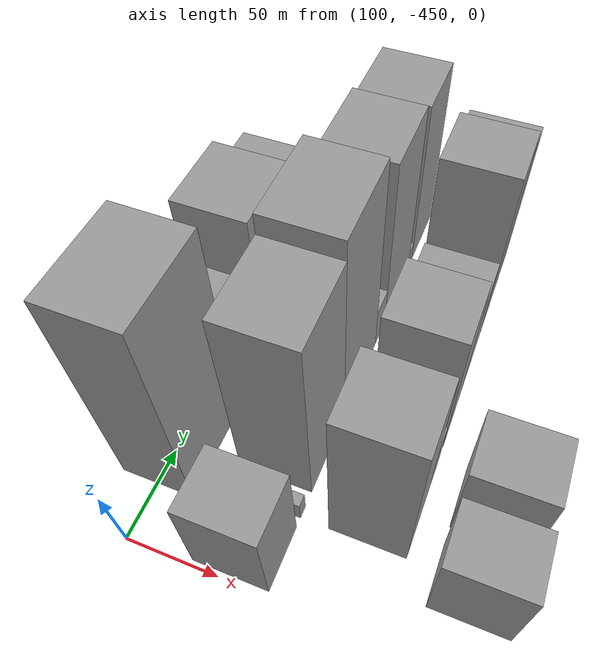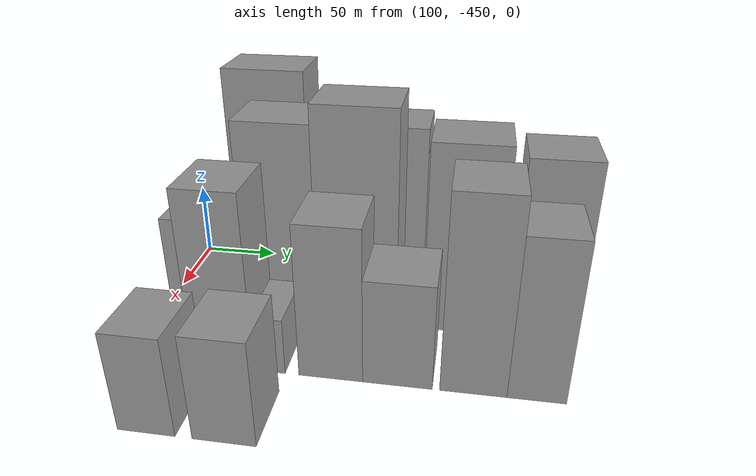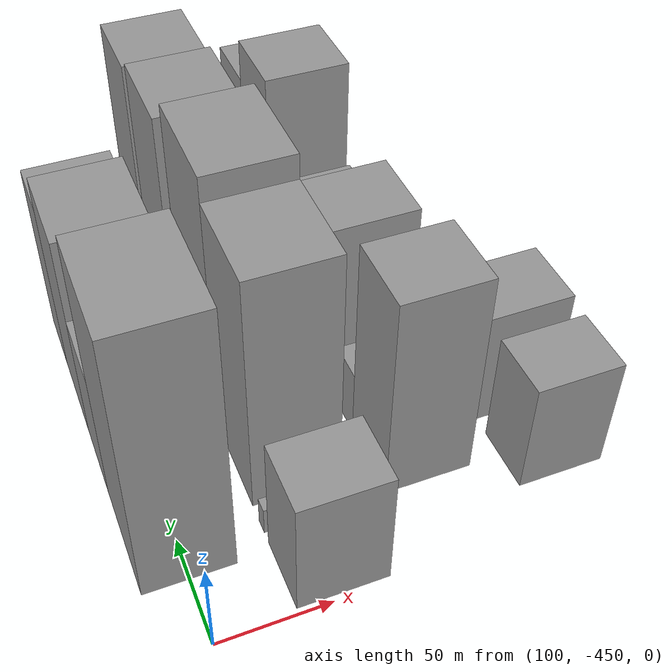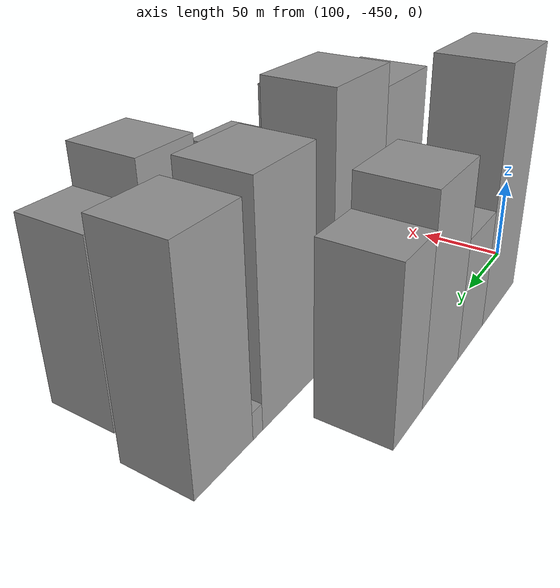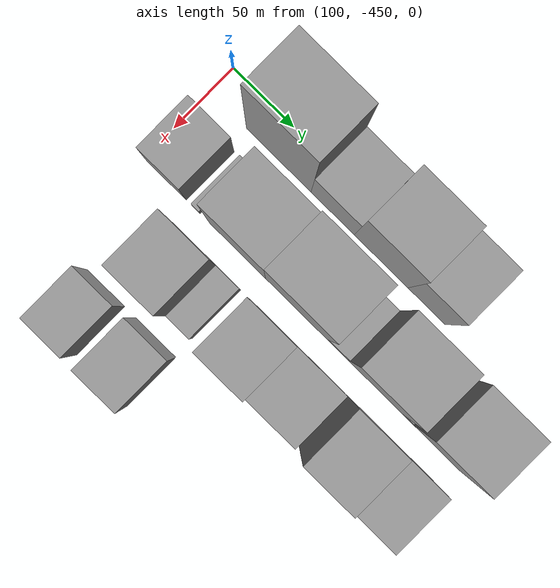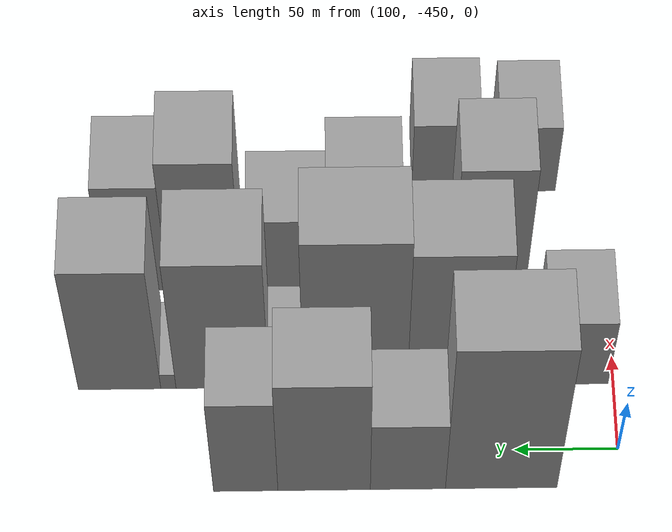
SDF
<sdf version="1.6">
 <world name="default">
  <model name="building_13">
   <static>1</static>
   <pose>100.0000 -392.7377 0 0.000000 0.000000 0.000000</pose>
   <link name="link">
    <pose>0 0 72.00 0 0 0</pose>
    <collision name="collision"><geometry><box><size>40.0000 53.4315 144.0000</size></box></geometry></collision>
    <visual name="visual">
     <cast_shadows>0</cast_shadows>
     <geometry><box><size>40.0000 53.4315 144.0000</size></box></geometry>
     <material>
      <script>
       <uri>model://grey_wall/materials/scripts</uri>
       <uri>model://grey_wall/materials/textures</uri>
       <name>vrc/grey_wall</name>
      </script>
     </material>
    </visual>
   </link>
  </model>
  <model name="building_14">
   <static>1</static>
   <pose>100.0000 -348.0701 0 0.000000 0.000000 0.000000</pose>
   <link name="link">
    <pose>0 0 34.50 0 0 0</pose>
    <collision name="collision"><geometry><box><size>40.0000 35.9037 69.0000</size></box></geometry></collision>
    <visual name="visual">
     <cast_shadows>0</cast_shadows>
     <geometry><box><size>40.0000 35.9037 69.0000</size></box></geometry>
     <material>
      <script>
       <uri>model://grey_wall/materials/scripts</uri>
       <uri>model://grey_wall/materials/textures</uri>
       <name>vrc/grey_wall</name>
      </script>
     </material>
    </visual>
   </link>
  </model>
  <model name="building_15">
   <static>1</static>
   <pose>100.0000 -308.0212 0 0.000000 0.000000 0.000000</pose>
   <link name="link">
    <pose>0 0 55.50 0 0 0</pose>
    <collision name="collision"><geometry><box><size>40.0000 44.1941 111.0000</size></box></geometry></collision>
    <visual name="visual">
     <cast_shadows>0</cast_shadows>
     <geometry><box><size>40.0000 44.1941 111.0000</size></box></geometry>
     <material>
      <script>
       <uri>model://grey_wall/materials/scripts</uri>
       <uri>model://grey_wall/materials/textures</uri>
       <name>vrc/grey_wall</name>
      </script>
     </material>
    </visual>
   </link>
  </model>
  <model name="building_16">
   <static>1</static>
   <pose>100.0000 -270.5389 0 0.000000 0.000000 0.000000</pose>
   <link name="link">
    <pose>0 0 46.50 0 0 0</pose>
    <collision name="collision"><geometry><box><size>40.0000 30.7704 93.0000</size></box></geometry></collision>
    <visual name="visual">
     <cast_shadows>0</cast_shadows>
     <geometry><box><size>40.0000 30.7704 93.0000</size></box></geometry>
     <material>
      <script>
       <uri>model://grey_wall/materials/scripts</uri>
       <uri>model://grey_wall/materials/textures</uri>
       <name>vrc/grey_wall</name>
      </script>
     </material>
    </visual>
   </link>
  </model>
  <model name="building_63">
   <static>1</static>
   <pose>155.0000 -431.0790 0 0.000000 0.000000 0.000000</pose>
   <link name="link">
    <pose>0 0 31.50 0 0 0</pose>
    <collision name="collision"><geometry><box><size>40.0000 32.6125 63.0000</size></box></geometry></collision>
    <visual name="visual">
     <cast_shadows>0</cast_shadows>
     <geometry><box><size>40.0000 32.6125 63.0000</size></box></geometry>
     <material>
      <script>
       <uri>model://grey_wall/materials/scripts</uri>
       <uri>model://grey_wall/materials/textures</uri>
       <name>vrc/grey_wall</name>
      </script>
     </material>
    </visual>
   </link>
  </model>
  <model name="building_64">
   <static>1</static>
   <pose>155.0000 -406.5843 0 0.000000 0.000000 0.000000</pose>
   <link name="link">
    <pose>0 0 7.50 0 0 0</pose>
    <collision name="collision"><geometry><box><size>40.0000 6.3770 15.0000</size></box></geometry></collision>
    <visual name="visual">
     <cast_shadows>0</cast_shadows>
     <geometry><box><size>40.0000 6.3770 15.0000</size></box></geometry>
     <material>
      <script>
       <uri>model://grey_wall/materials/scripts</uri>
       <uri>model://grey_wall/materials/textures</uri>
       <name>vrc/grey_wall</name>
      </script>
     </material>
    </visual>
   </link>
  </model>
  <model name="building_65">
   <static>1</static>
   <pose>155.0000 -372.2850 0 0.000000 0.000000 0.000000</pose>
   <link name="link">
    <pose>0 0 64.50 0 0 0</pose>
    <collision name="collision"><geometry><box><size>40.0000 46.2216 129.0000</size></box></geometry></collision>
    <visual name="visual">
     <cast_shadows>0</cast_shadows>
     <geometry><box><size>40.0000 46.2216 129.0000</size></box></geometry>
     <material>
      <script>
       <uri>model://grey_wall/materials/scripts</uri>
       <uri>model://grey_wall/materials/textures</uri>
       <name>vrc/grey_wall</name>
      </script>
     </material>
    </visual>
   </link>
  </model>
  <model name="building_66">
   <static>1</static>
   <pose>155.0000 -323.7393 0 0.000000 0.000000 0.000000</pose>
   <link name="link">
    <pose>0 0 70.50 0 0 0</pose>
    <collision name="collision"><geometry><box><size>40.0000 50.8699 141.0000</size></box></geometry></collision>
    <visual name="visual">
     <cast_shadows>0</cast_shadows>
     <geometry><box><size>40.0000 50.8699 141.0000</size></box></geometry>
     <material>
      <script>
       <uri>model://grey_wall/materials/scripts</uri>
       <uri>model://grey_wall/materials/textures</uri>
       <name>vrc/grey_wall</name>
      </script>
     </material>
    </visual>
   </link>
  </model>
  <model name="building_67">
   <static>1</static>
   <pose>155.0000 -289.9436 0 0.000000 0.000000 0.000000</pose>
   <link name="link">
    <pose>0 0 15.00 0 0 0</pose>
    <collision name="collision"><geometry><box><size>40.0000 16.7214 30.0000</size></box></geometry></collision>
    <visual name="visual">
     <cast_shadows>0</cast_shadows>
     <geometry><box><size>40.0000 16.7214 30.0000</size></box></geometry>
     <material>
      <script>
       <uri>model://grey_wall/materials/scripts</uri>
       <uri>model://grey_wall/materials/textures</uri>
       <name>vrc/grey_wall</name>
      </script>
     </material>
    </visual>
   </link>
  </model>
  <model name="building_68">
   <static>1</static>
   <pose>155.0000 -258.8616 0 0.000000 0.000000 0.000000</pose>
   <link name="link">
    <pose>0 0 61.50 0 0 0</pose>
    <collision name="collision"><geometry><box><size>40.0000 45.4427 123.0000</size></box></geometry></collision>
    <visual name="visual">
     <cast_shadows>0</cast_shadows>
     <geometry><box><size>40.0000 45.4427 123.0000</size></box></geometry>
     <material>
      <script>
       <uri>model://grey_wall/materials/scripts</uri>
       <uri>model://grey_wall/materials/textures</uri>
       <name>vrc/grey_wall</name>
      </script>
     </material>
    </visual>
   </link>
  </model>
  <model name="building_69">
   <static>1</static>
   <pose>155.0000 -232.4272 0 0.000000 0.000000 0.000000</pose>
   <link name="link">
    <pose>0 0 7.50 0 0 0</pose>
    <collision name="collision"><geometry><box><size>40.0000 7.4260 15.0000</size></box></geometry></collision>
    <visual name="visual">
     <cast_shadows>0</cast_shadows>
     <geometry><box><size>40.0000 7.4260 15.0000</size></box></geometry>
     <material>
      <script>
       <uri>model://grey_wall/materials/scripts</uri>
       <uri>model://grey_wall/materials/textures</uri>
       <name>vrc/grey_wall</name>
      </script>
     </material>
    </visual>
   </link>
  </model>
  <model name="building_70">
   <static>1</static>
   <pose>155.0000 -208.6007 0 0.000000 0.000000 0.000000</pose>
   <link name="link">
    <pose>0 0 58.50 0 0 0</pose>
    <collision name="collision"><geometry><box><size>40.0000 40.2268 117.0000</size></box></geometry></collision>
    <visual name="visual">
     <cast_shadows>0</cast_shadows>
     <geometry><box><size>40.0000 40.2268 117.0000</size></box></geometry>
     <material>
      <script>
       <uri>model://grey_wall/materials/scripts</uri>
       <uri>model://grey_wall/materials/textures</uri>
       <name>vrc/grey_wall</name>
      </script>
     </material>
    </visual>
   </link>
  </model>
  <model name="building_114">
   <static>1</static>
   <pose>210.0000 -391.4846 0 0.000000 0.000000 0.000000</pose>
   <link name="link">
    <pose>0 0 55.50 0 0 0</pose>
    <collision name="collision"><geometry><box><size>40.0000 36.3574 111.0000</size></box></geometry></collision>
    <visual name="visual">
     <cast_shadows>0</cast_shadows>
     <geometry><box><size>40.0000 36.3574 111.0000</size></box></geometry>
     <material>
      <script>
       <uri>model://grey_wall/materials/scripts</uri>
       <uri>model://grey_wall/materials/textures</uri>
       <name>vrc/grey_wall</name>
      </script>
     </material>
    </visual>
   </link>
  </model>
  <model name="building_115">
   <static>1</static>
   <pose>210.0000 -364.0473 0 0.000000 0.000000 0.000000</pose>
   <link name="link">
    <pose>0 0 18.00 0 0 0</pose>
    <collision name="collision"><geometry><box><size>40.0000 18.5171 36.0000</size></box></geometry></collision>
    <visual name="visual">
     <cast_shadows>0</cast_shadows>
     <geometry><box><size>40.0000 18.5171 36.0000</size></box></geometry>
     <material>
      <script>
       <uri>model://grey_wall/materials/scripts</uri>
       <uri>model://grey_wall/materials/textures</uri>
       <name>vrc/grey_wall</name>
      </script>
     </material>
    </visual>
   </link>
  </model>
  <model name="building_116">
   <static>1</static>
   <pose>210.0000 -328.5736 0 0.000000 0.000000 0.000000</pose>
   <link name="link">
    <pose>0 0 48.00 0 0 0</pose>
    <collision name="collision"><geometry><box><size>40.0000 36.4304 96.0000</size></box></geometry></collision>
    <visual name="visual">
     <cast_shadows>0</cast_shadows>
     <geometry><box><size>40.0000 36.4304 96.0000</size></box></geometry>
     <material>
      <script>
       <uri>model://grey_wall/materials/scripts</uri>
       <uri>model://grey_wall/materials/textures</uri>
       <name>vrc/grey_wall</name>
      </script>
     </material>
    </visual>
   </link>
  </model>
  <model name="building_117">
   <static>1</static>
   <pose>210.0000 -290.9938 0 0.000000 0.000000 0.000000</pose>
   <link name="link">
    <pose>0 0 33.00 0 0 0</pose>
    <collision name="collision"><geometry><box><size>40.0000 38.7291 66.0000</size></box></geometry></collision>
    <visual name="visual">
     <cast_shadows>0</cast_shadows>
     <geometry><box><size>40.0000 38.7291 66.0000</size></box></geometry>
     <material>
      <script>
       <uri>model://grey_wall/materials/scripts</uri>
       <uri>model://grey_wall/materials/textures</uri>
       <name>vrc/grey_wall</name>
      </script>
     </material>
    </visual>
   </link>
  </model>
  <model name="building_118">
   <static>1</static>
   <pose>210.0000 -249.4739 0 0.000000 0.000000 0.000000</pose>
   <link name="link">
    <pose>0 0 60.00 0 0 0</pose>
    <collision name="collision"><geometry><box><size>40.0000 36.3107 120.0000</size></box></geometry></collision>
    <visual name="visual">
     <cast_shadows>0</cast_shadows>
     <geometry><box><size>40.0000 36.3107 120.0000</size></box></geometry>
     <material>
      <script>
       <uri>model://grey_wall/materials/scripts</uri>
       <uri>model://grey_wall/materials/textures</uri>
       <name>vrc/grey_wall</name>
      </script>
     </material>
    </visual>
   </link>
  </model>
  <model name="building_119">
   <static>1</static>
   <pose>210.0000 -215.6604 0 0.000000 0.000000 0.000000</pose>
   <link name="link">
    <pose>0 0 49.50 0 0 0</pose>
    <collision name="collision"><geometry><box><size>40.0000 31.3165 99.0000</size></box></geometry></collision>
    <visual name="visual">
     <cast_shadows>0</cast_shadows>
     <geometry><box><size>40.0000 31.3165 99.0000</size></box></geometry>
     <material>
      <script>
       <uri>model://grey_wall/materials/scripts</uri>
       <uri>model://grey_wall/materials/textures</uri>
       <name>vrc/grey_wall</name>
      </script>
     </material>
    </visual>
   </link>
  </model>
  <model name="building_165">
   <static>1</static>
   <pose>265.0000 -411.8316 0 0.000000 0.000000 0.000000</pose>
   <link name="link">
    <pose>0 0 30.00 0 0 0</pose>
    <collision name="collision"><geometry><box><size>40.0000 30.9233 60.0000</size></box></geometry></collision>
    <visual name="visual">
     <cast_shadows>0</cast_shadows>
     <geometry><box><size>40.0000 30.9233 60.0000</size></box></geometry>
     <material>
      <script>
       <uri>model://grey_wall/materials/scripts</uri>
       <uri>model://grey_wall/materials/textures</uri>
       <name>vrc/grey_wall</name>
      </script>
     </material>
    </visual>
   </link>
  </model>
  <model name="building_166">
   <static>1</static>
   <pose>265.0000 -370.6947 0 0.000000 0.000000 0.000000</pose>
   <link name="link">
    <pose>0 0 31.50 0 0 0</pose>
    <collision name="collision"><geometry><box><size>40.0000 33.3504 63.0000</size></box></geometry></collision>
    <visual name="visual">
     <cast_shadows>0</cast_shadows>
     <geometry><box><size>40.0000 33.3504 63.0000</size></box></geometry>
     <material>
      <script>
       <uri>model://grey_wall/materials/scripts</uri>
       <uri>model://grey_wall/materials/textures</uri>
       <name>vrc/grey_wall</name>
      </script>
     </material>
    </visual>
   </link>
  </model>
 </world>
</sdf>
